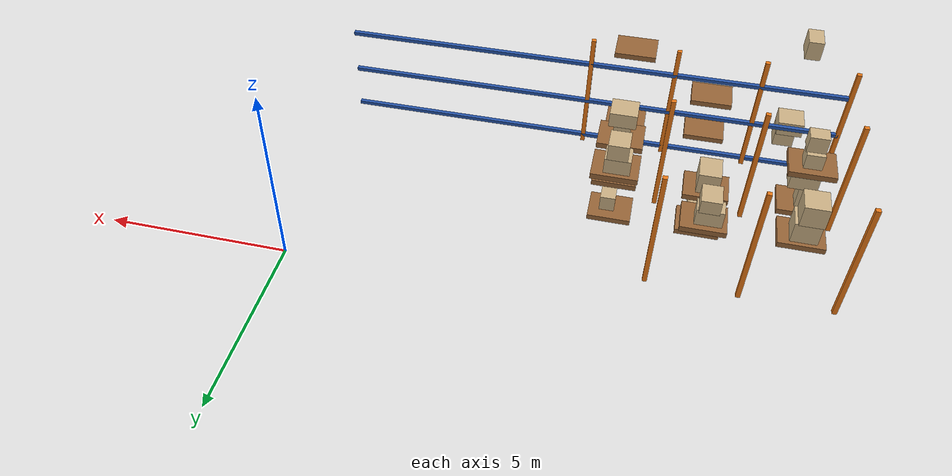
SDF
<sdf version="1.7">
 <world name="default">
  <model name="warehouse_racks">
   <static>1</static>
   <link name="r00_u0_1">
    <pose>-14 -6.5 1.75 0 0 0</pose>
    <collision name="c"><geometry><box><size>0.12 0.12 3.5</size></box></geometry></collision>
    <visual name="v">
     <geometry><box><size>0.12 0.12 3.5</size></box></geometry>
     <material>
      <ambient>0.910 0.471 0.086 1</ambient>
      <diffuse>0.910 0.471 0.086 1</diffuse>
      <specular>0.1 0.1 0.1 1</specular>
     </material>
    </visual>
   </link>
   <link name="r00_u1_1">
    <pose>-11.6667 -6.5 1.75 0 0 0</pose>
    <collision name="c"><geometry><box><size>0.12 0.12 3.5</size></box></geometry></collision>
    <visual name="v">
     <geometry><box><size>0.12 0.12 3.5</size></box></geometry>
     <material>
      <ambient>0.910 0.471 0.086 1</ambient>
      <diffuse>0.910 0.471 0.086 1</diffuse>
      <specular>0.1 0.1 0.1 1</specular>
     </material>
    </visual>
   </link>
   <link name="r00_u2_1">
    <pose>-9.33333 -6.5 1.75 0 0 0</pose>
    <collision name="c"><geometry><box><size>0.12 0.12 3.5</size></box></geometry></collision>
    <visual name="v">
     <geometry><box><size>0.12 0.12 3.5</size></box></geometry>
     <material>
      <ambient>0.910 0.471 0.086 1</ambient>
      <diffuse>0.910 0.471 0.086 1</diffuse>
      <specular>0.1 0.1 0.1 1</specular>
     </material>
    </visual>
   </link>
   <link name="r00_u3_1">
    <pose>-7 -6.5 1.75 0 0 0</pose>
    <collision name="c"><geometry><box><size>0.12 0.12 3.5</size></box></geometry></collision>
    <visual name="v">
     <geometry><box><size>0.12 0.12 3.5</size></box></geometry>
     <material>
      <ambient>0.910 0.471 0.086 1</ambient>
      <diffuse>0.910 0.471 0.086 1</diffuse>
      <specular>0.1 0.1 0.1 1</specular>
     </material>
    </visual>
   </link>
   <link name="r00_b0_1">
    <pose>-7 -6.5 0.2 0 0 0</pose>
    <collision name="c"><geometry><box><size>14 0.12 0.1</size></box></geometry></collision>
    <visual name="v">
     <geometry><box><size>14 0.12 0.1</size></box></geometry>
     <material>
      <ambient>0.149 0.329 0.659 1</ambient>
      <diffuse>0.149 0.329 0.659 1</diffuse>
      <specular>0.1 0.1 0.1 1</specular>
     </material>
    </visual>
   </link>
   <link name="r00_b1_1">
    <pose>-7 -6.5 1.45 0 0 0</pose>
    <collision name="c"><geometry><box><size>14 0.12 0.1</size></box></geometry></collision>
    <visual name="v">
     <geometry><box><size>14 0.12 0.1</size></box></geometry>
     <material>
      <ambient>0.149 0.329 0.659 1</ambient>
      <diffuse>0.149 0.329 0.659 1</diffuse>
      <specular>0.1 0.1 0.1 1</specular>
     </material>
    </visual>
   </link>
   <link name="r00_b2_1">
    <pose>-7 -6.5 2.7 0 0 0</pose>
    <collision name="c"><geometry><box><size>14 0.12 0.1</size></box></geometry></collision>
    <visual name="v">
     <geometry><box><size>14 0.12 0.1</size></box></geometry>
     <material>
      <ambient>0.149 0.329 0.659 1</ambient>
      <diffuse>0.149 0.329 0.659 1</diffuse>
      <specular>0.1 0.1 0.1 1</specular>
     </material>
    </visual>
   </link>
   <link name="r10_u0_0">
    <pose>-14 -4.2 1.75 0 0 0</pose>
    <collision name="c"><geometry><box><size>0.12 0.12 3.5</size></box></geometry></collision>
    <visual name="v">
     <geometry><box><size>0.12 0.12 3.5</size></box></geometry>
     <material>
      <ambient>0.910 0.471 0.086 1</ambient>
      <diffuse>0.910 0.471 0.086 1</diffuse>
      <specular>0.1 0.1 0.1 1</specular>
     </material>
    </visual>
   </link>
   <link name="r10_u0_1">
    <pose>-14 -1.2 1.75 0 0 0</pose>
    <collision name="c"><geometry><box><size>0.12 0.12 3.5</size></box></geometry></collision>
    <visual name="v">
     <geometry><box><size>0.12 0.12 3.5</size></box></geometry>
     <material>
      <ambient>0.910 0.471 0.086 1</ambient>
      <diffuse>0.910 0.471 0.086 1</diffuse>
      <specular>0.1 0.1 0.1 1</specular>
     </material>
    </visual>
   </link>
   <link name="r10_u1_0">
    <pose>-11.6667 -4.2 1.75 0 0 0</pose>
    <collision name="c"><geometry><box><size>0.12 0.12 3.5</size></box></geometry></collision>
    <visual name="v">
     <geometry><box><size>0.12 0.12 3.5</size></box></geometry>
     <material>
      <ambient>0.910 0.471 0.086 1</ambient>
      <diffuse>0.910 0.471 0.086 1</diffuse>
      <specular>0.1 0.1 0.1 1</specular>
     </material>
    </visual>
   </link>
   <link name="r10_u1_1">
    <pose>-11.6667 -1.2 1.75 0 0 0</pose>
    <collision name="c"><geometry><box><size>0.12 0.12 3.5</size></box></geometry></collision>
    <visual name="v">
     <geometry><box><size>0.12 0.12 3.5</size></box></geometry>
     <material>
      <ambient>0.910 0.471 0.086 1</ambient>
      <diffuse>0.910 0.471 0.086 1</diffuse>
      <specular>0.1 0.1 0.1 1</specular>
     </material>
    </visual>
   </link>
   <link name="r10_u2_0">
    <pose>-9.33333 -4.2 1.75 0 0 0</pose>
    <collision name="c"><geometry><box><size>0.12 0.12 3.5</size></box></geometry></collision>
    <visual name="v">
     <geometry><box><size>0.12 0.12 3.5</size></box></geometry>
     <material>
      <ambient>0.910 0.471 0.086 1</ambient>
      <diffuse>0.910 0.471 0.086 1</diffuse>
      <specular>0.1 0.1 0.1 1</specular>
     </material>
    </visual>
   </link>
   <link name="r10_u2_1">
    <pose>-9.33333 -1.2 1.75 0 0 0</pose>
    <collision name="c"><geometry><box><size>0.12 0.12 3.5</size></box></geometry></collision>
    <visual name="v">
     <geometry><box><size>0.12 0.12 3.5</size></box></geometry>
     <material>
      <ambient>0.910 0.471 0.086 1</ambient>
      <diffuse>0.910 0.471 0.086 1</diffuse>
      <specular>0.1 0.1 0.1 1</specular>
     </material>
    </visual>
   </link>
  </model>
  <model name="warehouse_loads">
   <static>1</static>
   <link name="r00L0_0_1_c0">
    <pose>-12.745 -7.36016 0.634755 0 0 0</pose>
    <collision name="c"><geometry><box><size>0.558321 0.58665 0.469509</size></box></geometry></collision>
    <visual name="v">
     <geometry><box><size>0.558321 0.58665 0.469509</size></box></geometry>
     <material>
      <ambient>0.792 0.690 0.518 1</ambient>
      <diffuse>0.792 0.690 0.518 1</diffuse>
      <specular>0.1 0.1 0.1 1</specular>
     </material>
    </visual>
   </link>
   <link name="r00L0_0_1_c1">
    <pose>-12.8214 -7.31135 1.07696 0 0 0</pose>
    <collision name="c"><geometry><box><size>0.706787 0.729763 0.414898</size></box></geometry></collision>
    <visual name="v">
     <geometry><box><size>0.706787 0.729763 0.414898</size></box></geometry>
     <material>
      <ambient>0.792 0.690 0.518 1</ambient>
      <diffuse>0.792 0.690 0.518 1</diffuse>
      <specular>0.1 0.1 0.1 1</specular>
     </material>
    </visual>
   </link>
   <link name="r00L0_1_1_p">
    <pose>-10.5 -7.4 0.325 0 0 0</pose>
    <collision name="c"><geometry><box><size>1.15 0.95 0.15</size></box></geometry></collision>
    <visual name="v">
     <geometry><box><size>1.15 0.95 0.15</size></box></geometry>
     <material>
      <ambient>0.588 0.392 0.216 1</ambient>
      <diffuse>0.588 0.392 0.216 1</diffuse>
      <specular>0.1 0.1 0.1 1</specular>
     </material>
    </visual>
   </link>
   <link name="r00L0_2_1_p">
    <pose>-8.16667 -7.4 0.325 0 0 0</pose>
    <collision name="c"><geometry><box><size>1.15 0.95 0.15</size></box></geometry></collision>
    <visual name="v">
     <geometry><box><size>1.15 0.95 0.15</size></box></geometry>
     <material>
      <ambient>0.588 0.392 0.216 1</ambient>
      <diffuse>0.588 0.392 0.216 1</diffuse>
      <specular>0.1 0.1 0.1 1</specular>
     </material>
    </visual>
   </link>
   <link name="r00L1_1_1_p">
    <pose>-10.5 -7.4 1.575 0 0 0</pose>
    <collision name="c"><geometry><box><size>1.15 0.95 0.15</size></box></geometry></collision>
    <visual name="v">
     <geometry><box><size>1.15 0.95 0.15</size></box></geometry>
     <material>
      <ambient>0.588 0.392 0.216 1</ambient>
      <diffuse>0.588 0.392 0.216 1</diffuse>
      <specular>0.1 0.1 0.1 1</specular>
     </material>
    </visual>
   </link>
   <link name="r00L2_0_1_c1">
    <pose>-12.8327 -7.39296 3.67509 0 0 0</pose>
    <collision name="c"><geometry><box><size>0.40116 0.679194 0.537066</size></box></geometry></collision>
    <visual name="v">
     <geometry><box><size>0.40116 0.679194 0.537066</size></box></geometry>
     <material>
      <ambient>0.792 0.690 0.518 1</ambient>
      <diffuse>0.792 0.690 0.518 1</diffuse>
      <specular>0.1 0.1 0.1 1</specular>
     </material>
    </visual>
   </link>
   <link name="r00L2_2_1_p">
    <pose>-8.16667 -7.4 2.825 0 0 0</pose>
    <collision name="c"><geometry><box><size>1.15 0.95 0.15</size></box></geometry></collision>
    <visual name="v">
     <geometry><box><size>1.15 0.95 0.15</size></box></geometry>
     <material>
      <ambient>0.588 0.392 0.216 1</ambient>
      <diffuse>0.588 0.392 0.216 1</diffuse>
      <specular>0.1 0.1 0.1 1</specular>
     </material>
    </visual>
   </link>
   <link name="r10L0_1_0_p">
    <pose>-10.5 -3.3 0.325 0 0 0</pose>
    <collision name="c"><geometry><box><size>1.15 0.95 0.15</size></box></geometry></collision>
    <visual name="v">
     <geometry><box><size>1.15 0.95 0.15</size></box></geometry>
     <material>
      <ambient>0.588 0.392 0.216 1</ambient>
      <diffuse>0.588 0.392 0.216 1</diffuse>
      <specular>0.1 0.1 0.1 1</specular>
     </material>
    </visual>
   </link>
   <link name="r10L0_1_0_c0">
    <pose>-10.403 -3.31151 0.679891 0 0 0</pose>
    <collision name="c"><geometry><box><size>0.50914 0.653882 0.559782</size></box></geometry></collision>
    <visual name="v">
     <geometry><box><size>0.50914 0.653882 0.559782</size></box></geometry>
     <material>
      <ambient>0.792 0.690 0.518 1</ambient>
      <diffuse>0.792 0.690 0.518 1</diffuse>
      <specular>0.1 0.1 0.1 1</specular>
     </material>
    </visual>
   </link>
   <link name="r10L0_2_0_p">
    <pose>-8.16667 -3.3 0.325 0 0 0</pose>
    <collision name="c"><geometry><box><size>1.15 0.95 0.15</size></box></geometry></collision>
    <visual name="v">
     <geometry><box><size>1.15 0.95 0.15</size></box></geometry>
     <material>
      <ambient>0.588 0.392 0.216 1</ambient>
      <diffuse>0.588 0.392 0.216 1</diffuse>
      <specular>0.1 0.1 0.1 1</specular>
     </material>
    </visual>
   </link>
   <link name="r10L0_2_0_c0">
    <pose>-8.07556 -3.37526 0.618933 0 0 0</pose>
    <collision name="c"><geometry><box><size>0.401005 0.497932 0.437867</size></box></geometry></collision>
    <visual name="v">
     <geometry><box><size>0.401005 0.497932 0.437867</size></box></geometry>
     <material>
      <ambient>0.792 0.690 0.518 1</ambient>
      <diffuse>0.792 0.690 0.518 1</diffuse>
      <specular>0.1 0.1 0.1 1</specular>
     </material>
    </visual>
   </link>
   <link name="r10L1_0_0_p">
    <pose>-12.8333 -3.3 1.575 0 0 0</pose>
    <collision name="c"><geometry><box><size>1.15 0.95 0.15</size></box></geometry></collision>
    <visual name="v">
     <geometry><box><size>1.15 0.95 0.15</size></box></geometry>
     <material>
      <ambient>0.588 0.392 0.216 1</ambient>
      <diffuse>0.588 0.392 0.216 1</diffuse>
      <specular>0.1 0.1 0.1 1</specular>
     </material>
    </visual>
   </link>
   <link name="r10L1_0_0_c0">
    <pose>-12.8819 -3.25054 1.94001 0 0 0</pose>
    <collision name="c"><geometry><box><size>0.412199 0.421903 0.580019</size></box></geometry></collision>
    <visual name="v">
     <geometry><box><size>0.412199 0.421903 0.580019</size></box></geometry>
     <material>
      <ambient>0.792 0.690 0.518 1</ambient>
      <diffuse>0.792 0.690 0.518 1</diffuse>
      <specular>0.1 0.1 0.1 1</specular>
     </material>
    </visual>
   </link>
   <link name="r10L1_0_0_c1">
    <pose>-12.7418 -3.2766 2.43906 0 0 0</pose>
    <collision name="c"><geometry><box><size>0.714493 0.518674 0.418079</size></box></geometry></collision>
    <visual name="v">
     <geometry><box><size>0.714493 0.518674 0.418079</size></box></geometry>
     <material>
      <ambient>0.792 0.690 0.518 1</ambient>
      <diffuse>0.792 0.690 0.518 1</diffuse>
      <specular>0.1 0.1 0.1 1</specular>
     </material>
    </visual>
   </link>
   <link name="r10L1_0_1_p">
    <pose>-12.8333 -2.1 1.575 0 0 0</pose>
    <collision name="c"><geometry><box><size>1.15 0.95 0.15</size></box></geometry></collision>
    <visual name="v">
     <geometry><box><size>1.15 0.95 0.15</size></box></geometry>
     <material>
      <ambient>0.588 0.392 0.216 1</ambient>
      <diffuse>0.588 0.392 0.216 1</diffuse>
      <specular>0.1 0.1 0.1 1</specular>
     </material>
    </visual>
   </link>
   <link name="r10L1_0_1_c0">
    <pose>-12.8739 -2.05569 1.94053 0 0 0</pose>
    <collision name="c"><geometry><box><size>0.661253 0.641352 0.581057</size></box></geometry></collision>
    <visual name="v">
     <geometry><box><size>0.661253 0.641352 0.581057</size></box></geometry>
     <material>
      <ambient>0.792 0.690 0.518 1</ambient>
      <diffuse>0.792 0.690 0.518 1</diffuse>
      <specular>0.1 0.1 0.1 1</specular>
     </material>
    </visual>
   </link>
   <link name="r10L1_0_1_c1">
    <pose>-12.9203 -2.0348 2.52437 0 0 0</pose>
    <collision name="c"><geometry><box><size>0.608449 0.68198 0.586622</size></box></geometry></collision>
    <visual name="v">
     <geometry><box><size>0.608449 0.68198 0.586622</size></box></geometry>
     <material>
      <ambient>0.792 0.690 0.518 1</ambient>
      <diffuse>0.792 0.690 0.518 1</diffuse>
      <specular>0.1 0.1 0.1 1</specular>
     </material>
    </visual>
   </link>
   <link name="r10L1_1_0_p">
    <pose>-10.5 -3.3 1.575 0 0 0</pose>
    <collision name="c"><geometry><box><size>1.15 0.95 0.15</size></box></geometry></collision>
    <visual name="v">
     <geometry><box><size>1.15 0.95 0.15</size></box></geometry>
     <material>
      <ambient>0.588 0.392 0.216 1</ambient>
      <diffuse>0.588 0.392 0.216 1</diffuse>
      <specular>0.1 0.1 0.1 1</specular>
     </material>
    </visual>
   </link>
   <link name="r10L1_1_0_c0">
    <pose>-10.5227 -3.34979 1.94424 0 0 0</pose>
    <collision name="c"><geometry><box><size>0.566316 0.734872 0.588478</size></box></geometry></collision>
    <visual name="v">
     <geometry><box><size>0.566316 0.734872 0.588478</size></box></geometry>
     <material>
      <ambient>0.792 0.690 0.518 1</ambient>
      <diffuse>0.792 0.690 0.518 1</diffuse>
      <specular>0.1 0.1 0.1 1</specular>
     </material>
    </visual>
   </link>
   <link name="r10L1_1_1_p">
    <pose>-10.5 -2.1 1.575 0 0 0</pose>
    <collision name="c"><geometry><box><size>1.15 0.95 0.15</size></box></geometry></collision>
    <visual name="v">
     <geometry><box><size>1.15 0.95 0.15</size></box></geometry>
     <material>
      <ambient>0.588 0.392 0.216 1</ambient>
      <diffuse>0.588 0.392 0.216 1</diffuse>
      <specular>0.1 0.1 0.1 1</specular>
     </material>
    </visual>
   </link>
   <link name="r10L1_1_1_c0">
    <pose>-10.5983 -2.01379 1.88707 0 0 0</pose>
    <collision name="c"><geometry><box><size>0.68518 0.446448 0.474135</size></box></geometry></collision>
    <visual name="v">
     <geometry><box><size>0.68518 0.446448 0.474135</size></box></geometry>
     <material>
      <ambient>0.792 0.690 0.518 1</ambient>
      <diffuse>0.792 0.690 0.518 1</diffuse>
      <specular>0.1 0.1 0.1 1</specular>
     </material>
    </visual>
   </link>
   <link name="r10L1_1_1_c1">
    <pose>-10.5528 -2.02775 2.31805 0 0 0</pose>
    <collision name="c"><geometry><box><size>0.50616 0.642238 0.387829</size></box></geometry></collision>
    <visual name="v">
     <geometry><box><size>0.50616 0.642238 0.387829</size></box></geometry>
     <material>
      <ambient>0.792 0.690 0.518 1</ambient>
      <diffuse>0.792 0.690 0.518 1</diffuse>
      <specular>0.1 0.1 0.1 1</specular>
     </material>
    </visual>
   </link>
   <link name="r10L1_2_0_p">
    <pose>-8.16667 -3.3 1.575 0 0 0</pose>
    <collision name="c"><geometry><box><size>1.15 0.95 0.15</size></box></geometry></collision>
    <visual name="v">
     <geometry><box><size>1.15 0.95 0.15</size></box></geometry>
     <material>
      <ambient>0.588 0.392 0.216 1</ambient>
      <diffuse>0.588 0.392 0.216 1</diffuse>
      <specular>0.1 0.1 0.1 1</specular>
     </material>
    </visual>
   </link>
   <link name="r10L1_2_0_c0">
    <pose>-8.2272 -3.24942 1.83488 0 0 0</pose>
    <collision name="c"><geometry><box><size>0.52665 0.673787 0.369754</size></box></geometry></collision>
    <visual name="v">
     <geometry><box><size>0.52665 0.673787 0.369754</size></box></geometry>
     <material>
      <ambient>0.792 0.690 0.518 1</ambient>
      <diffuse>0.792 0.690 0.518 1</diffuse>
      <specular>0.1 0.1 0.1 1</specular>
     </material>
    </visual>
   </link>
   <link name="r10L1_2_0_c1">
    <pose>-8.15615 -3.33485 2.19899 0 0 0</pose>
    <collision name="c"><geometry><box><size>0.486558 0.422657 0.358466</size></box></geometry></collision>
    <visual name="v">
     <geometry><box><size>0.486558 0.422657 0.358466</size></box></geometry>
     <material>
      <ambient>0.792 0.690 0.518 1</ambient>
      <diffuse>0.792 0.690 0.518 1</diffuse>
      <specular>0.1 0.1 0.1 1</specular>
     </material>
    </visual>
   </link>
   <link name="r10L2_0_0_p">
    <pose>-12.8333 -3.3 2.825 0 0 0</pose>
    <collision name="c"><geometry><box><size>1.15 0.95 0.15</size></box></geometry></collision>
    <visual name="v">
     <geometry><box><size>1.15 0.95 0.15</size></box></geometry>
     <material>
      <ambient>0.588 0.392 0.216 1</ambient>
      <diffuse>0.588 0.392 0.216 1</diffuse>
      <specular>0.1 0.1 0.1 1</specular>
     </material>
    </visual>
   </link>
   <link name="r10L2_0_0_c0">
    <pose>-12.8134 -3.26967 3.10686 0 0 0</pose>
    <collision name="c"><geometry><box><size>0.449479 0.471392 0.413728</size></box></geometry></collision>
    <visual name="v">
     <geometry><box><size>0.449479 0.471392 0.413728</size></box></geometry>
     <material>
      <ambient>0.792 0.690 0.518 1</ambient>
      <diffuse>0.792 0.690 0.518 1</diffuse>
      <specular>0.1 0.1 0.1 1</specular>
     </material>
    </visual>
   </link>
   <link name="r10L2_0_0_c1">
    <pose>-12.7977 -3.36297 3.52963 0 0 0</pose>
    <collision name="c"><geometry><box><size>0.471205 0.403983 0.431812</size></box></geometry></collision>
    <visual name="v">
     <geometry><box><size>0.471205 0.403983 0.431812</size></box></geometry>
     <material>
      <ambient>0.792 0.690 0.518 1</ambient>
      <diffuse>0.792 0.690 0.518 1</diffuse>
      <specular>0.1 0.1 0.1 1</specular>
     </material>
    </visual>
   </link>
   <link name="r10L2_2_0_p">
    <pose>-8.16667 -3.3 2.825 0 0 0</pose>
    <collision name="c"><geometry><box><size>1.15 0.95 0.15</size></box></geometry></collision>
    <visual name="v">
     <geometry><box><size>1.15 0.95 0.15</size></box></geometry>
     <material>
      <ambient>0.588 0.392 0.216 1</ambient>
      <diffuse>0.588 0.392 0.216 1</diffuse>
      <specular>0.1 0.1 0.1 1</specular>
     </material>
    </visual>
   </link>
   <link name="r10L2_2_0_c0">
    <pose>-8.16997 -3.31837 3.13695 0 0 0</pose>
    <collision name="c"><geometry><box><size>0.427277 0.411013 0.473906</size></box></geometry></collision>
    <visual name="v">
     <geometry><box><size>0.427277 0.411013 0.473906</size></box></geometry>
     <material>
      <ambient>0.792 0.690 0.518 1</ambient>
      <diffuse>0.792 0.690 0.518 1</diffuse>
      <specular>0.1 0.1 0.1 1</specular>
     </material>
    </visual>
   </link>
   <link name="r10L2_2_0_c1">
    <pose>-8.15987 -3.26939 3.56823 0 0 0</pose>
    <collision name="c"><geometry><box><size>0.678545 0.632409 0.388638</size></box></geometry></collision>
    <visual name="v">
     <geometry><box><size>0.678545 0.632409 0.388638</size></box></geometry>
     <material>
      <ambient>0.792 0.690 0.518 1</ambient>
      <diffuse>0.792 0.690 0.518 1</diffuse>
      <specular>0.1 0.1 0.1 1</specular>
     </material>
    </visual>
   </link>
   <link name="r10L2_2_1_p">
    <pose>-8.16667 -2.1 2.825 0 0 0</pose>
    <collision name="c"><geometry><box><size>1.15 0.95 0.15</size></box></geometry></collision>
    <visual name="v">
     <geometry><box><size>1.15 0.95 0.15</size></box></geometry>
     <material>
      <ambient>0.588 0.392 0.216 1</ambient>
      <diffuse>0.588 0.392 0.216 1</diffuse>
      <specular>0.1 0.1 0.1 1</specular>
     </material>
    </visual>
   </link>
   <link name="r10L2_2_1_c0">
    <pose>-8.20515 -2.00936 3.11041 0 0 0</pose>
    <collision name="c"><geometry><box><size>0.643392 0.543426 0.420825</size></box></geometry></collision>
    <visual name="v">
     <geometry><box><size>0.643392 0.543426 0.420825</size></box></geometry>
     <material>
      <ambient>0.792 0.690 0.518 1</ambient>
      <diffuse>0.792 0.690 0.518 1</diffuse>
      <specular>0.1 0.1 0.1 1</specular>
     </material>
    </visual>
   </link>
   <link name="r10L2_2_1_c1">
    <pose>-8.18338 -2.02715 3.54047 0 0 0</pose>
    <collision name="c"><geometry><box><size>0.509327 0.598282 0.439295</size></box></geometry></collision>
    <visual name="v">
     <geometry><box><size>0.509327 0.598282 0.439295</size></box></geometry>
     <material>
      <ambient>0.792 0.690 0.518 1</ambient>
      <diffuse>0.792 0.690 0.518 1</diffuse>
      <specular>0.1 0.1 0.1 1</specular>
     </material>
    </visual>
   </link>
  </model>
 </world>
</sdf>
